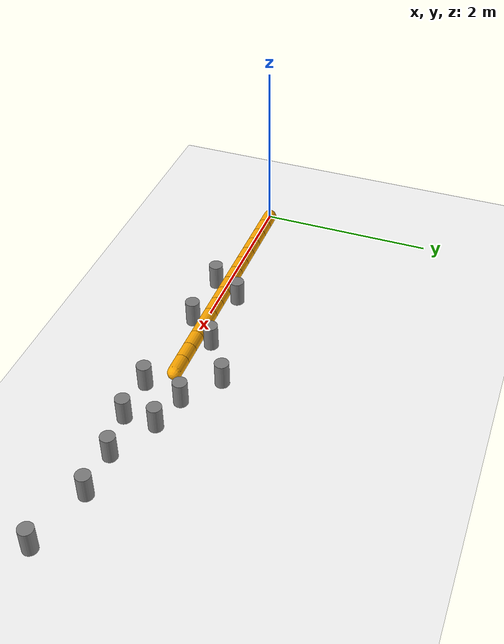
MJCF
<mujoco>
  <include file="boa.xml"/>
  <include file="obstacles.xml"/>

  <visual>
    <headlight diffuse="0.6 0.6 0.6"  ambient="0.1 0.1 0.1" specular="0 0 0"/>
    <rgba haze="0.15 0.25 0.35 1"/>
    <global azimuth="120" elevation="-20"/>
  </visual>

  <asset>
    <texture type="skybox" builtin="gradient" rgb1="0.3 0.5 0.7" rgb2="0 0 0" width="512" height="3072"/>
    <texture type="2d" name="groundplane" builtin="checker" mark="edge" rgb1="0.2 0.3 0.4" rgb2="0.1 0.2 0.3" markrgb="0.8 0.8 0.8" width="300" height="300"/>
    <material name="groundplane" texture="groundplane" texuniform="true" texrepeat="5 5" reflectance="0.2"/>
  </asset>

  <worldbody>
    <light pos="0 0 3" dir="0 0 -1"  directional="false"/>
    <geom name="floor" friction="0.05" pos="0 0 -0.08" size="0 0 .125" type="plane" material="groundplane" conaffinity="15" condim="3" zaxis="0 0 1" rgba="1 1 1 1"/>
  </worldbody>

</mujoco>

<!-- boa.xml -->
<mujoco>
  <default>
    <default class="boa">
      <geom type="capsule" friction="0.05" mass="0.4" size="0.08 0.10" rgba="1 0.66 0 1" zaxis="1 0 0" pos="0.1 0 0"/>
      <joint damping="0.4"/>
    </default>
    <intvelocity kp="50" forcerange="-3 3" forcelimited="true" actrange="-1.57 1.57"/>
  </default>

  <worldbody>

    <body childclass="boa" name="boa">
      <geom/>
      <joint type="free"/>

      <body pos="0.2 0 0">
        <geom/>
        <joint name="joint_1"/>

        <body pos="0.2 0 0">
          <geom/>
          <joint name="joint_2"/>

          <body pos="0.2 0 0">
            <geom/>
            <joint name="joint_3"/>

            <body pos="0.2 0 0">
              <geom/>
              <joint name="joint_4"/>

              <body pos="0.2 0 0">
                <geom/>
                <joint name="joint_5"/>

                <body pos="0.2 0 0">
                  <geom/>
                  <joint name="joint_6"/>

                  <body pos="0.2 0 0">
                    <geom/>
                    <joint name="joint_7"/>

                    <body pos="0.2 0 0">
                      <geom/>
                      <joint name="joint_8"/>

                      <body pos="0.2 0 0">
                        <geom/>
                        <joint name="joint_9"/>

                        <body pos="0.2 0 0">
                          <geom/>
                          <joint name="joint_10"/>

                          <body pos="0.2 0 0">
                            <geom/>
                            <joint name="joint_11"/>

                            <body pos="0.2 0 0">
                              <geom/>
                              <joint name="joint_12"/>

                              <body pos="0.2 0 0">
                                <geom/>
                                <joint name="joint_13"/>

                                <body pos="0.2 0 0" name="head">
                                  <geom/>
                                  <joint name="joint_14"/>

                                </body>
                              </body>
                            </body>
                          </body>
                        </body>
                      </body>
                    </body>
                  </body>
                </body>
              </body>
            </body>
          </body>
        </body>
      </body>
    </body>
  </worldbody>

  <actuator>
    <intvelocity joint="joint_1"/>
    <intvelocity joint="joint_2"/>
    <intvelocity joint="joint_3"/>
    <intvelocity joint="joint_4"/>
    <intvelocity joint="joint_5"/>
    <intvelocity joint="joint_6"/>
    <intvelocity joint="joint_7"/>
    <intvelocity joint="joint_8"/>
    <intvelocity joint="joint_9"/>
    <intvelocity joint="joint_10"/>
    <intvelocity joint="joint_11"/>
    <intvelocity joint="joint_12"/>
    <intvelocity joint="joint_13"/>
    <intvelocity joint="joint_14"/>
  </actuator>
</mujoco>

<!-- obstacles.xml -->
<mujoco>
  <default>
    <default class="obstacle">
      <geom type="cylinder" friction="0.05" size="0.08 0.16" rgba="0.5 0.5 0.5 1"  pos="0 0 0.05" zaxis="0 0 1"/>
    </default>
  </default>

  <worldbody>
    <body childclass="obstacle">
      <!-- Initial obstacles -->
      <geom pos="1.6 0.17 0.05"/>
      <geom pos="1.4 -0.17 0.05"/>
      <geom pos="2.4 0.17 0.05"/>
      <geom pos="2.1 -0.17 0.05"/>

      <!-- More obstacles -->
      <geom pos="2.9 0.5 0.05"/>
      <geom pos="3.3 0.2 0.05"/>
      <geom pos="3.2 -0.25 0.05"/>
      <geom pos="3.7 -0.25 0.05"/>
      <geom pos="3.7 0.1 0.05"/>
      <geom pos="4.2 -0.16 0.05"/>
      <geom pos="4.7 -0.16 0.05"/>
      <geom pos="5.4 -0.35 0.05"/>
    </body>
  </worldbody>

</mujoco>
